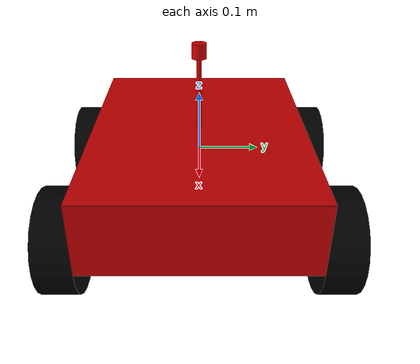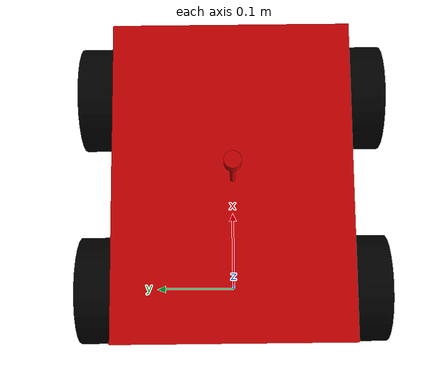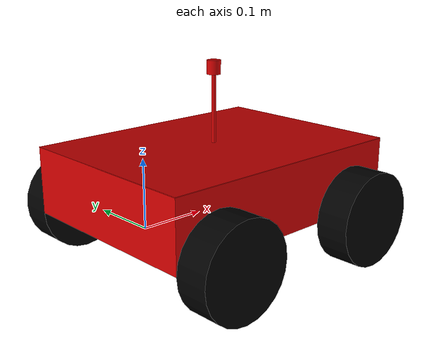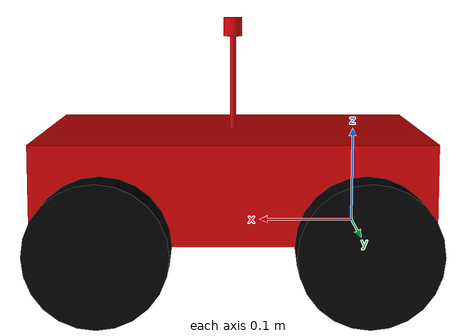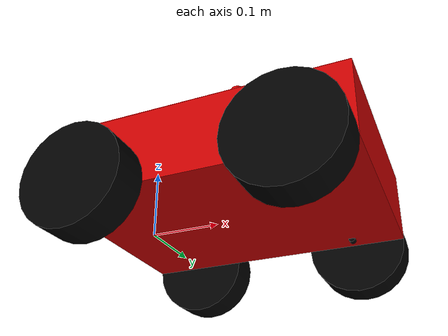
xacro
<?xml version="1.0"?>
<robot
  name="ackermann_chassis" xmlns:xacro="http://ros.org/wiki/xacro">
  <xacro:include filename="$(find ackermann_simu)/urdf/ackermann_control.xacro"/>
  <xacro:include filename="$(find ackermann_simu)/urdf/ackermann_model_gazebo.xacro"/>
  <xacro:include filename="$(find ackermann_simu)/urdf/common_properties.xacro"/>

  <!-- Body -->
  <link
    name="base_link">
    <inertial>
      <origin
        xyz="0 0 0"
        rpy="0 0 0" />
      <mass
        value="5" />
      <inertia
        ixx="0.041667"
        ixy="0.0"
        ixz="0.0"
        iyy="0.070833"
        iyz="0.0"
        izz="0.104167" />
    </inertial>
    <visual>
      <origin
        xyz="0.13 0 0.05"
        rpy="0 0 0" />
      <geometry>
        <box size="0.4 0.3 0.1" />
      </geometry>
      <material name="red" />
    </visual>
    <collision>
      <origin
        xyz="0.13 0 0.05"
        rpy="0 0 0" />
      <geometry>
        <box size="0.4 0.2 0.1" />
      </geometry>
    </collision>
  </link>

  <!-- Picture -->
  <link
    name="pic_link">
    <visual>
      <origin
        xyz="0 0 0"
        rpy="0 0 0" />
      <geometry>
        <box size="0.4 0.3 0.001" />
      </geometry>
      <material name="red" />
    </visual>
  </link>
  <joint
    name="joint_pic"
    type="fixed">
    <origin
      xyz="0.13 0.0 0.1"
      rpy="0 0 0" />
    <parent
      link="base_link" />
    <child
      link="pic_link" />
  </joint>

  <!-- Wheel -->
  <link name="left_steering_hinge">
    <inertial>
      <origin xyz="0 0 0" rpy="0 0 0" />
      <mass value="0.5" />
      <inertia ixx="1.35E-05" ixy="0" ixz="0" iyy="2.5E-05" iyz="0" izz="1.35E-05" />
    </inertial>
    <visual>
      <origin xyz="0 0 0" rpy="1.57 0 0" />
      <geometry>
        <cylinder length="0.01" radius="0.005" />
      </geometry>
      <material name="black" />
    </visual>
    <collision>
      <origin xyz="0 0 0" rpy="1.57 0 0" />
      <geometry>
        <cylinder length="0.01" radius="0.005" />
      </geometry>
    </collision>
  </link>
  <joint name="left_steering_hinge_joint" type="revolute">
    <origin xyz="0.26 0.125 0" rpy="0 0 0" />
    <parent link="base_link" />
    <child link="left_steering_hinge" />
    <axis xyz="0 0 1" />
    <limit lower="-0.6" upper="0.6" effort="5.0" velocity="1000.0"/>
  </joint>
  <xacro:steering_hinge_transmission name="left_steering_hinge" />

  <link name="left_front_wheel">
    <inertial>
      <origin xyz="0 0 0" rpy="0 0 0" />
      <mass value="2" />
      <inertia ixx="0.002867" ixy="0" ixz="0" iyy="0.0049" iyz="0" izz="0.002867" />
    </inertial>
    <visual>
      <origin xyz="0 0 0" rpy="1.57 0 0" />
      <geometry>
        <cylinder length="0.05" radius="0.07" />
      </geometry>
      <material name="black" />
    </visual>
    <collision>
      <origin xyz="0 0 0" rpy="1.57 0 0" />
      <geometry>
        <cylinder length="0.05" radius="0.07" />
      </geometry>
    </collision>
  </link>
  <joint name="left_front_wheel_joint" type="continuous">
    <origin xyz="0 0.05 0" rpy="0 0 0" />
    <parent link="left_steering_hinge" />
    <child link="left_front_wheel" />
    <axis xyz="0 1 0" />
    <limit effort="10" velocity="1000" />
  </joint>
  <xacro:wheel_transmission name="left_front_wheel" />

  <link name="right_steering_hinge">
    <inertial>
      <origin xyz="0 0 0" rpy="0 0 0" />
      <mass value="0.5" />
      <inertia ixx="1.35E-05" ixy="0" ixz="0" iyy="2.5E-05" iyz="0" izz="1.35E-05" />
    </inertial>
    <visual>
      <origin xyz="0 0 0" rpy="1.57 0 0" />
      <geometry>
        <cylinder length="0.01" radius="0.005" />
      </geometry>
      <material name="black" />
    </visual>
    <collision>
      <origin xyz="0 0 0" rpy="1.57 0 0" />
      <geometry>
        <cylinder length="0.01" radius="0.005" />
      </geometry>
    </collision>
  </link>
  <joint name="right_steering_hinge_joint" type="revolute">
    <origin xyz="0.26 -0.125 0" rpy="0 0 0" />
    <parent link="base_link" />
    <child link="right_steering_hinge" />
    <axis xyz="0 0 1" />
    <limit lower="-0.6" upper="0.6" effort="5.0" velocity="1000.0"/>
  </joint>
  <xacro:steering_hinge_transmission name="right_steering_hinge" />

  <link name="right_front_wheel">
    <inertial>
      <origin xyz="0 0 0" rpy="0 0 0" />
      <mass value="2" />
      <inertia ixx="0.002867" ixy="0" ixz="0" iyy="0.0049" iyz="0" izz="0.002867" />
    </inertial>
    <visual>
      <origin xyz="0 0 0" rpy="1.57 0 0" />
      <geometry>
        <cylinder length="0.05" radius="0.07" />
      </geometry>
      <material name="black" />
    </visual>
    <collision>
      <origin xyz="0 0 0" rpy="1.57 0 0" />
      <geometry>
        <cylinder length="0.05" radius="0.07" />
      </geometry>
    </collision>
  </link>
  <joint name="right_front_wheel_joint" type="continuous">
    <origin xyz="0 -0.05 0" rpy="0 0 0" />
    <parent link="right_steering_hinge" />
    <child link="right_front_wheel" />
    <axis xyz="0 1 0" />
    <limit effort="10" velocity="1000" />
  </joint>
  <xacro:wheel_transmission name="right_front_wheel" />

  <link name="left_rear_wheel">
    <inertial>
      <origin xyz="0 0 0" rpy="0 0 0" />
      <mass value="2" />
      <inertia ixx="0.002867" ixy="0" ixz="0" iyy="0.0049" iyz="0" izz="0.002867" />
    </inertial>
    <visual>
      <origin xyz="0 0 0" rpy="1.57 0 0" />
      <geometry>
        <cylinder length="0.05" radius="0.07" />
      </geometry>
      <material name="black" />
    </visual>
    <collision>
      <origin xyz="0 0 0" rpy="1.57 0 0" />
      <geometry>
        <cylinder length="0.05" radius="0.07" />
      </geometry>
    </collision>
  </link>
  <joint name="left_rear_wheel_joint" type="continuous">
    <origin xyz="0 0.175 0" rpy="0 0 0" />
    <parent link="base_link" />
    <child link="left_rear_wheel" />
    <axis xyz="0 1 0" />
    <limit effort="10" velocity="1000" />
  </joint>
  <xacro:wheel_transmission name="left_rear_wheel" />

  <link name="right_rear_wheel">
    <inertial>
      <origin xyz="0 0 0" rpy="0 0 0" />
      <mass value="2" />
      <inertia ixx="0.002867" ixy="0" ixz="0" iyy="0.0049" iyz="0" izz="0.002867" />
    </inertial>
    <visual>
      <origin xyz="0 0 0" rpy="1.57 0 0" />
      <geometry>
        <cylinder length="0.05" radius="0.07" />
      </geometry>
      <material name="black" />
    </visual>
    <collision>
      <origin xyz="0 0 0" rpy="1.57 0 0" />
      <geometry>
        <cylinder length="0.05" radius="0.07" />
      </geometry>
    </collision>
  </link>
  <joint name="right_rear_wheel_joint" type="continuous">
    <origin xyz="0 -0.175 0" rpy="0 0 0" />
    <parent link="base_link" />
    <child link="right_rear_wheel" />
    <axis xyz="0 1 0" />
    <limit effort="10" velocity="1000" />
  </joint>
  <xacro:wheel_transmission name="right_rear_wheel" />

  <!-- Imu -->
  <link name="imu_link"/>
  <joint
    name="joint_imu"
    type="fixed">
    <origin
      xyz="0 0 0"
      rpy="0 0 0" />
    <parent
      link="base_link" />
    <child
      link="imu_link" />
    <axis
      xyz="0 0 0" />
    <safety_controller
      k_velocity="0" />
  </joint>

  <!-- Lidar -->
  <link name="laser_link">
    <visual>
      <origin
        xyz="0 0 0"
        rpy="0 0 0" />
      <geometry>
        <cylinder length="0.02" radius="0.01" />
      </geometry>
      <material name="red" />
    </visual>
    <visual>
      <origin
        xyz="0 0 -0.06"
        rpy="0 0 0" />
      <geometry>
        <cylinder length="0.1" radius="0.0033" />
      </geometry>
      <material name="red" />
    </visual>
  </link>
  <joint
    name="joint_ladar"
    type="fixed">
    <origin
      xyz="0.13 0 0.21"
      rpy="0 0 0" />
    <parent
      link="base_link" />
    <child
      link="laser_link" />
    <axis
      xyz="0 0 0" />
    <safety_controller
      k_velocity="0" />
  </joint>

</robot>

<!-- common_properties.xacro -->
<robot name="ackermann_chassis" xmlns:xacro="http://ros.org/wiki/xacro">

  <!-- Init colour -->
  <material name="black">
      <color rgba="0.0 0.0 0.0 1.0"/>
  </material>

  <material name="dark">
    <color rgba="0.3 0.3 0.3 1.0"/>
  </material>
  <material name="light_black">
    <color rgba="0.4 0.4 0.4 1.0"/>
  </material>

  <material name="blue">
    <color rgba="0.0 0.0 0.8 1.0"/>
  </material>

  <material name="green">
    <color rgba="0.0 0.8 0.0 1.0"/>
  </material>

  <material name="grey">
    <color rgba="0.5 0.5 0.5 1.0"/>
  </material>

  <material name="orange">
    <color rgba="${255/255} ${108/255} ${10/255} 1.0"/>
  </material>

  <material name="brown">
    <color rgba="${222/255} ${207/255} ${195/255} 1.0"/>
  </material>

  <material name="red">
    <color rgba="0.8 0.0 0.0 1.0"/>
  </material>

  <material name="white">
    <color rgba="1.0 1.0 1.0 1.0"/>
  </material>
</robot>
